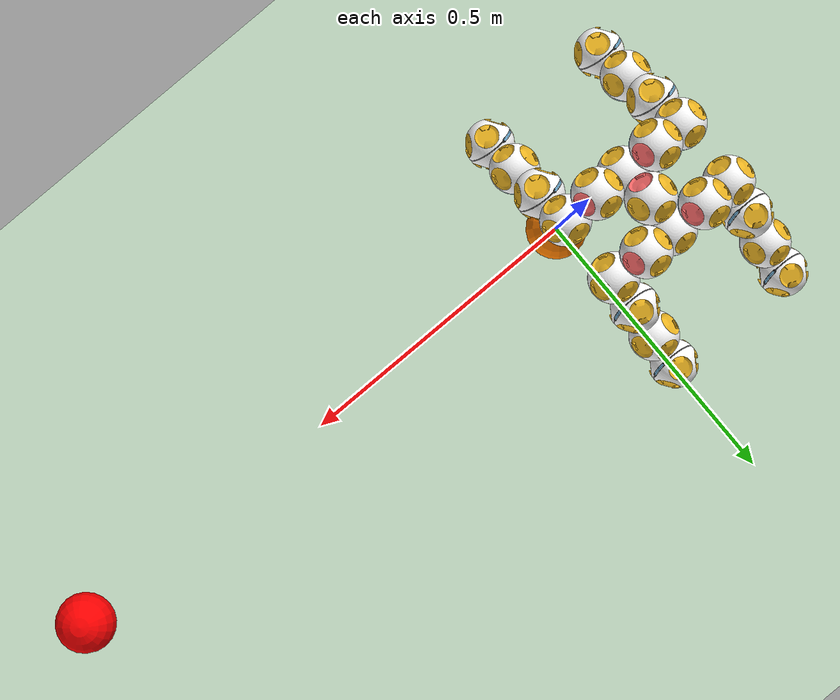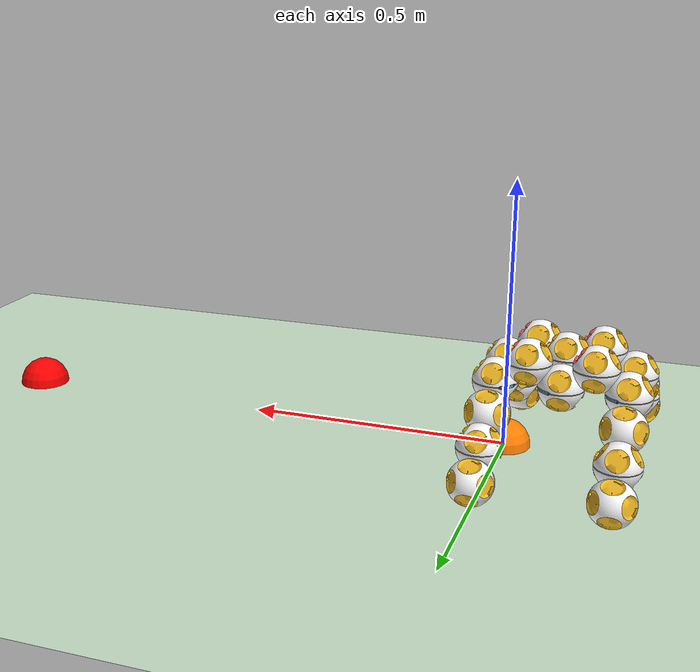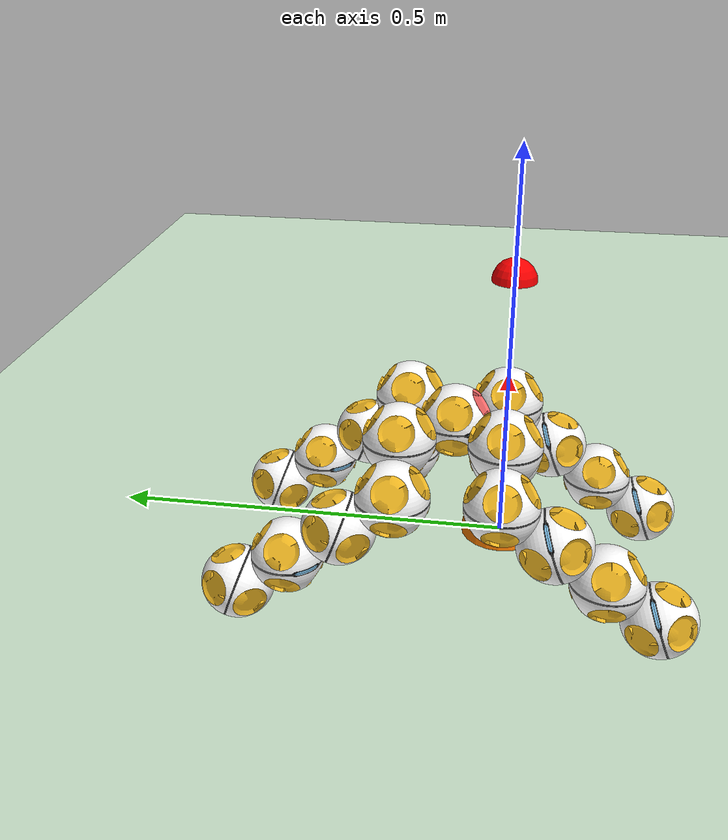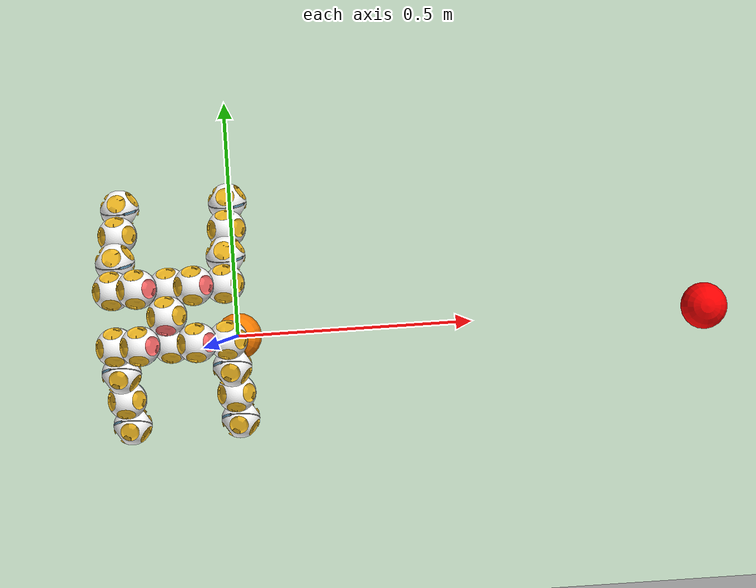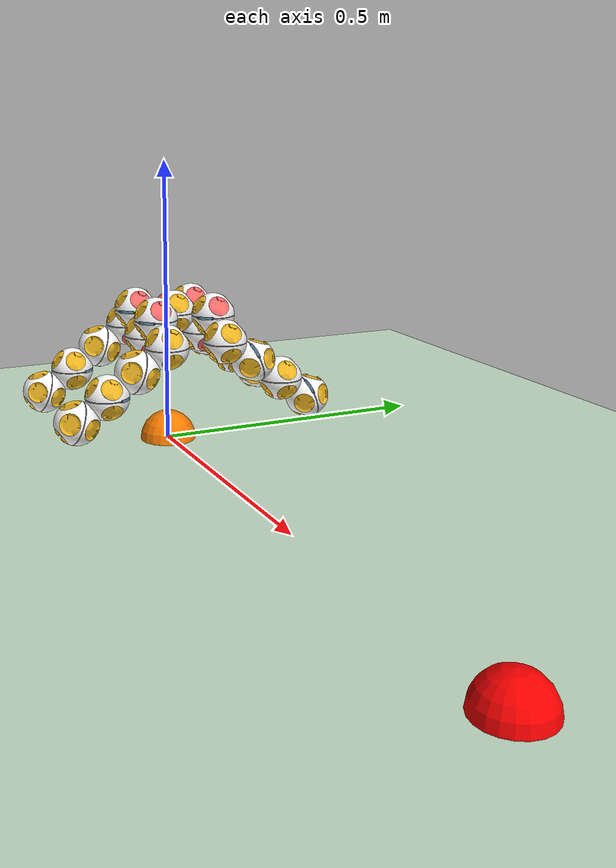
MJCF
<mujoco model="cellrobot(v1.0)">
    <compiler angle="radian" coordinate="local" meshdir="meshes" strippath="false" texturedir="textures"/>
    <option gravity="0 0 -9.81" integrator="RK4" timestep="0.001"/>

    <size nconmax="250" njmax="795" nstack="631875"/>

    <default>
        <geom contype="1"  conaffinity="1" condim="3" friction="1 0.005 0.0001" margin="0.001"   solref=".01 1" solimp=".99 .99 .01"/>
        <mesh scale="1 1 1"/>
        <joint armature="1" damping="15"  limited="true"/>
        <default class="detacher">
            <geom conaffinity="1"   margin="0.001" pos="0 0 0" rgba="0.93 0.71 0.13 1"
                  type="mesh"/>
        </default>
        <default class="cell">
            <geom conaffinity="1"   margin="0.001" solimp=".99 .99 .01" solref=".01 1"
                  type="mesh"/>
        </default>
    </default>
    <asset>
        <mesh file="cell_gear/shell_gear.STL" name="cell_half_gear"/>
        <mesh file="cell_gear/detacher1.STL" name="detacher1"/>
        <mesh file="cell_gear/detacher2.STL" name="detacher2"/>
        <mesh file="cell_gear/detacher3.STL" name="detacher3"/>
        <mesh file="cell_gear/detacher4.STL" name="detacher4"/>
        <mesh file="cell_gear/circle_gear.STL" name="circle_gear"/>
        <mesh file="cell_gear/led_gear.STL" name="led_gear"/>

        <mesh file="cell_motor/shell_motor.STL" name="cell_half_motor"/>
        <mesh file="cell_motor/detacher5.STL" name="detacher5"/>
        <mesh file="cell_motor/detacher6.STL" name="detacher6"/>
        <mesh file="cell_motor/detacher7.STL" name="detacher7"/>
        <mesh file="cell_motor/detacher8.STL" name="detacher8"/>
        <mesh file="cell_motor/circle_motor.STL" name="circle_motor"/>
        <mesh file="cell_motor/led_motor.STL" name="led_motor"/>

        <texture builtin="checker" height="100" name="floor_tex" rgb1=".2 .3 .4" rgb2=".1 .2 .3" type="2d" width="100"/>
        <texture builtin="checker" height="100" name="texplane" rgb1="0 0 0" rgb2="0.8 0.8 0.8" type="2d" width="100"/>
        <texture file="block.png" gridlayout=".U..LFRB.D.." gridsize="3 4" name="texture:object" type="cube"/>

        <material name="floor_mat" reflectance="0.5" shininess="0.8" specular="0.7" texrepeat="10 10"
                  texture="floor_tex"/>
        <material name="MatPlane" reflectance="0.5" shininess="1" specular="1" texrepeat="30 30" texture="texplane"/>
        <material name="material:object" reflectance="0" shininess="0" specular="1" texture="texture:object"/>
    </asset>

    <visual>
        <map fogend="3" fogstart="1.5"/>
        <quality shadowsize="20480"/>
    </visual>

    <contact>
        <exclude body1="cell1_1" body2="cell1_2"/>
        <exclude body1="cell2_1" body2="cell2_2"/>
        <exclude body1="cell3_1" body2="cell3_2"/>
        <exclude body1="cell4_1" body2="cell4_2"/>
        <exclude body1="cell5_1" body2="cell5_2"/>
        <exclude body1="cell6_1" body2="cell6_2"/>
        <exclude body1="cell7_1" body2="cell7_2"/>
        <exclude body1="cell8_1" body2="cell8_2"/>
        <exclude body1="cell9_1" body2="cell9_2"/>
        <exclude body1="cell10_1" body2="cell10_2"/>
        <exclude body1="cell11_1" body2="cell11_2"/>
        <exclude body1="cell12_1" body2="cell12_2"/>
        <exclude body1="cell13_1" body2="cell13_2"/>
        <exclude body1="cell14_1" body2="cell14_2"/>
        <exclude body1="cell15_1" body2="cell15_2"/>
        <exclude body1="cell16_1" body2="cell16_2"/>
        <exclude body1="cell17_1" body2="cell17_2"/>
        <exclude body1="cell18_1" body2="cell18_2"/>
        <exclude body1="cell19_1" body2="cell19_2"/>
        <exclude body1="cell20_1" body2="cell20_2"/>
        <exclude body1="cell21_1" body2="cell21_2"/>
        <exclude body1="cell22_1" body2="cell22_2"/>
        <exclude body1="cell0_1" body2="cell1_2"/>
        <exclude body1="cell1_2" body2="cell2_2"/>
        <exclude body1="cell2_2" body2="cell3_2"/>
        <exclude body1="cell3_2" body2="cell4_2"/>
        <exclude body1="cell2_2" body2="cell5_2"/>
        <exclude body1="cell5_2" body2="cell6_2"/>
        <exclude body1="cell6_2" body2="cell7_2"/>
        <exclude body1="cell7_2" body2="cell8_1"/>
        <exclude body1="cell6_2" body2="cell9_2"/>
        <exclude body1="cell9_2" body2="cell10_2"/>
        <exclude body1="cell0_2" body2="cell11_1"/>
        <exclude body1="cell11_2" body2="cell12_1"/>
        <exclude body1="cell12_2" body2="cell13_1"/>
        <exclude body1="cell8_2" body2="cell14_1"/>
        <exclude body1="cell14_2" body2="cell15_1"/>
        <exclude body1="cell15_2" body2="cell16_1"/>
        <exclude body1="cell4_1" body2="cell17_1"/>
        <exclude body1="cell17_2" body2="cell18_1"/>
        <exclude body1="cell18_2" body2="cell19_1"/>
        <exclude body1="cell10_1" body2="cell20_1"/>
        <exclude body1="cell20_2" body2="cell21_1"/>
        <exclude body1="cell21_2" body2="cell22_1"/>
    </contact>

    <worldbody>

        <light cutoff="100" diffuse="1 1 1" dir="-0 0 -1.3" directional="true" exponent="1" pos="0 0 1.3"
               specular=".1 .1 .1"/>

        <camera axisangle="2 2 -2 1" mode="trackcom" name="main1" pos="2 2 2" target="torso"/>

        <geom conaffinity="1" condim="3" material="MatPlane" name="floor" pos="0 0 0" rgba="0.8 0.9 0.8 1"
              size="15 15 15" type="plane"/>

        <camera name="track" mode="trackcom" pos="0 -3 0.3" xyaxes="1 0 0 0 0 1" target="torso"/>
        <site name="target1" pos="0 0 0" rgba="1 0.5 0 1" size="0.05 " type="sphere"/>
        <site name="target2" pos="1 0 0" rgba="1 0 0 1" size="0.05 " type="sphere"/>
        <body euler="0  0 2.3562" name="torso" pos="0  0  0.17">
            <geom name="torso_geom" pos="0  0  0" size="0.02" type="sphere"/>
            <joint armature="0" damping="0" limited="false" margin="0.01" name="root" pos="0 0 0" type="free"/>
            <body name="cell0_1" pos="0 0 -0.001">
                <inertial
                        fullinertia="5.338593e-05 5.2989770000000003e-05 6.634227000000001e-05 4.3267e-07 1.1089e-06 2.2068200000000003e-06"
                        mass="0.09814" pos="-0.0004 -0.00079 0.009519999999999999"/>
                <geom class="cell" mesh="cell_half_gear" pos="0  0  0" rgba="1 1 1 1"/>
                <geom class="detacher" mesh="detacher1" rgba="1 0.42 0.42 1"/>
                <geom class="detacher" mesh="detacher2"/>
                <geom class="detacher" mesh="detacher3"/>
                <geom class="detacher" mesh="detacher4"/>
                <geom class="cell" mesh="circle_gear" pos="0  0  0" rgba="0 0 0 1"/>
                <geom class="cell" mesh="led_gear" pos="0  0  0" rgba="0.53 0.81 0.98 1"/>
                <body name="cell0_2" pos="0 0 0">
                    <site name="cell0" pos="0 0 0 " size="0.001 0.001 0.001"/>
                    <joint axis="0 0 1" limited="false" name="joint:cell0" pos="0 0 -0.001"/>
                    <inertial
                            fullinertia="5.363084e-05 5.412367e-05 5.157385e-05 2.1730000000000002e-07 4.8619e-07 4.5697000000000005e-07"
                            mass="0.1346" pos="0.00027 0.00011999999999999999 -0.01269"/>
                    <geom class="cell" mesh="cell_half_motor" pos="0  0  0" rgba="1 1 1 1"/>
                    <geom class="detacher" mesh="detacher5"/>
                    <geom class="detacher" mesh="detacher6"/>
                    <geom class="detacher" mesh="detacher7"/>
                    <geom class="detacher" mesh="detacher8"/>
                    <geom class="cell" mesh="circle_motor" pos="0  0  0" rgba="0 0 0 1"/>
                    <geom class="cell" mesh="led_motor" pos="0  0  0" rgba="0.53 0.81 0.98 1"/>
                    <body name="cell11_1" pos="-0.03963432 0.03963432 -0.04162788"
                          quat="0.40820406 0.81654081 -0.0 0.40820406">
                        <inertial
                                fullinertia="5.338593e-05 5.2989770000000003e-05 6.634227000000001e-05 4.3267e-07 1.1089e-06 2.2068200000000003e-06"
                                mass="0.09814" pos="-0.0004 -0.00079 0.009519999999999999"/>
                        <geom class="cell" mesh="cell_half_gear" pos="0  0  0" rgba="1 1 1 1"/>
                        <geom class="detacher" mesh="detacher1" rgba="1 0.42 0.42 1"/>
                        <geom class="detacher" mesh="detacher2"/>
                        <geom class="detacher" mesh="detacher3"/>
                        <geom class="detacher" mesh="detacher4"/>
                        <geom class="cell" mesh="circle_gear" pos="0  0  0" rgba="0 0 0 1"/>
                        <geom class="cell" mesh="led_gear" pos="0  0  0" rgba="0.53 0.81 0.98 1"/>
                        <body name="cell11_2" pos="0 0 0">
                            <site name="cell11" pos="0 0 0 " size="0.001 0.001 0.001"/>
                            <joint axis="0 0 1" limited="false" name="joint:cell11" pos="0 0 -0.001"/>
                            <inertial
                                    fullinertia="5.363084e-05 5.412367e-05 5.157385e-05 2.1730000000000002e-07 4.8619e-07 4.5697000000000005e-07"
                                    mass="0.1346" pos="0.00027 0.00011999999999999999 -0.01269"/>
                            <geom class="cell" mesh="cell_half_motor" pos="0  0  0" rgba="1 1 1 1"/>
                            <geom class="detacher" mesh="detacher5"/>
                            <geom class="detacher" mesh="detacher6"/>
                            <geom class="detacher" mesh="detacher7"/>
                            <geom class="detacher" mesh="detacher8"/>
                            <geom class="cell" mesh="circle_motor" pos="0  0  0" rgba="0 0 0 1"/>
                            <geom class="cell" mesh="led_motor" pos="0  0  0" rgba="0.53 0.81 0.98 1"/>
                            <body name="cell12_1" pos="-0.03963432 -0.03963432 -0.04162788"
                                  quat="0.0 0.57738155 0.57738155 0.57728771">
                                <inertial
                                        fullinertia="5.338593e-05 5.2989770000000003e-05 6.634227000000001e-05 4.3267e-07 1.1089e-06 2.2068200000000003e-06"
                                        mass="0.09814" pos="-0.0004 -0.00079 0.009519999999999999"/>
                                <geom class="cell" mesh="cell_half_gear" pos="0  0  0" rgba="1 1 1 1"/>
                                <geom class="detacher" mesh="detacher1" rgba="1 0.42 0.42 1"/>
                                <geom class="detacher" mesh="detacher2"/>
                                <geom class="detacher" mesh="detacher3"/>
                                <geom class="detacher" mesh="detacher4"/>
                                <geom class="cell" mesh="circle_gear" pos="0  0  0" rgba="0 0 0 1"/>
                                <geom class="cell" mesh="led_gear" pos="0  0  0" rgba="0.53 0.81 0.98 1"/>
                                <body name="cell12_2" pos="0 0 0">
                                    <site name="cell12" pos="0 0 0 " size="0.001 0.001 0.001"/>
                                    <joint axis="0 0 1" limited="false" name="joint:cell12" pos="0 0 -0.001"/>
                                    <inertial
                                            fullinertia="5.363084e-05 5.412367e-05 5.157385e-05 2.1730000000000002e-07 4.8619e-07 4.5697000000000005e-07"
                                            mass="0.1346" pos="0.00027 0.00011999999999999999 -0.01269"/>
                                    <geom class="cell" mesh="cell_half_motor" pos="0  0  0" rgba="1 1 1 1"/>
                                    <geom class="detacher" mesh="detacher5"/>
                                    <geom class="detacher" mesh="detacher6"/>
                                    <geom class="detacher" mesh="detacher7"/>
                                    <geom class="detacher" mesh="detacher8"/>
                                    <geom class="cell" mesh="circle_motor" pos="0  0  0" rgba="0 0 0 1"/>
                                    <geom class="cell" mesh="led_motor" pos="0  0  0" rgba="0.53 0.81 0.98 1"/>
                                    <body name="cell13_1" pos="-0.03963432 -0.03963432 -0.04162788"
                                          quat="0.0 0.57738155 0.57738155 0.57728771">
                                        <inertial
                                                fullinertia="5.338593e-05 5.2989770000000003e-05 6.634227000000001e-05 4.3267e-07 1.1089e-06 2.2068200000000003e-06"
                                                mass="0.09814" pos="-0.0004 -0.00079 0.009519999999999999"/>
                                        <geom class="cell" mesh="cell_half_gear" pos="0  0  0" rgba="1 1 1 1"/>
                                        <geom class="detacher" mesh="detacher1" rgba="1 0.42 0.42 1"/>
                                        <geom class="detacher" mesh="detacher2"/>
                                        <geom class="detacher" mesh="detacher3"/>
                                        <geom class="detacher" mesh="detacher4"/>
                                        <geom class="cell" mesh="circle_gear" pos="0  0  0" rgba="0 0 0 1"/>
                                        <geom class="cell" mesh="led_gear" pos="0  0  0" rgba="0.53 0.81 0.98 1"/>
                                        <body name="cell13_2" pos="0 0 0">
                                            <site name="cell13" pos="0 0 0 " size="0.001 0.001 0.001"/>
                                            <joint axis="0 0 1" limited="false" name="joint:cell13" pos="0 0 -0.001"/>
                                            <inertial
                                                    fullinertia="5.363084e-05 5.412367e-05 5.157385e-05 2.1730000000000002e-07 4.8619e-07 4.5697000000000005e-07"
                                                    mass="0.1346" pos="0.00027 0.00011999999999999999 -0.01269"/>
                                            <geom class="cell" mesh="cell_half_motor" pos="0  0  0" rgba="1 1 1 1"/>
                                            <geom class="detacher" mesh="detacher5"/>
                                            <geom class="detacher" mesh="detacher6"/>
                                            <geom class="detacher" mesh="detacher7"/>
                                            <geom class="detacher" mesh="detacher8"/>
                                            <geom class="cell" mesh="circle_motor" pos="0  0  0" rgba="0 0 0 1"/>
                                            <geom class="cell" mesh="led_motor" pos="0  0  0" rgba="0.53 0.81 0.98 1"/>
                                        </body>
                                    </body>
                                </body>
                            </body>
                        </body>
                    </body>
                </body>
                <body name="cell1_2" pos="0.04030095 0.04030095 0.0402944" quat="0.0 -0.0 -0.0 1.0">
                    <inertial
                            fullinertia="5.363084e-05 5.412367e-05 5.157385e-05 2.1730000000000002e-07 4.8619e-07 4.5697000000000005e-07"
                            mass="0.1346" pos="0.00027 0.00011999999999999999 -0.01269"/>
                    <geom class="cell" mesh="cell_half_motor" pos="0  0  0" rgba="1 1 1 1"/>
                    <geom class="detacher" mesh="detacher5"/>
                    <geom class="detacher" mesh="detacher6"/>
                    <geom class="detacher" mesh="detacher7"/>
                    <geom class="detacher" mesh="detacher8"/>
                    <geom class="cell" mesh="circle_motor" pos="0  0  0" rgba="0 0 0 1"/>
                    <geom class="cell" mesh="led_motor" pos="0  0  0" rgba="0.53 0.81 0.98 1"/>
                    <body name="cell1_1" pos="0 0 0">
                        <site name="cell1" pos="0 0 0 " size="0.001 0.001 0.001"/>
                        <joint limited="false" name="joint:cell1" pos="0 0 -0.001"/>
                        <inertial
                                fullinertia="5.338593e-05 5.2989770000000003e-05 6.634227000000001e-05 4.3267e-07 1.1089e-06 2.2068200000000003e-06"
                                mass="0.09814" pos="-0.0004 -0.00079 0.009519999999999999"/>
                        <geom class="cell" mesh="cell_half_gear" pos="0  0  0" rgba="1 1 1 1"/>
                        <geom class="detacher" mesh="detacher1" rgba="1 0.42 0.42 1"/>
                        <geom class="detacher" mesh="detacher2"/>
                        <geom class="detacher" mesh="detacher3"/>
                        <geom class="detacher" mesh="detacher4"/>
                        <geom class="cell" mesh="circle_gear" pos="0  0  0" rgba="0 0 0 1"/>
                        <geom class="cell" mesh="led_gear" pos="0  0  0" rgba="0.53 0.81 0.98 1"/>
                    </body>
                    <body name="cell2_2" pos="-0.04030095 -0.04030095 -0.0422944" quat="0.0 0.70710678 0.70710678 -0.0">
                        <inertial
                                fullinertia="5.363084e-05 5.412367e-05 5.157385e-05 2.1730000000000002e-07 4.8619e-07 4.5697000000000005e-07"
                                mass="0.1346" pos="0.00027 0.00011999999999999999 -0.01269"/>
                        <geom class="cell" mesh="cell_half_motor" pos="0  0  0" rgba="1 1 1 1"/>
                        <geom class="detacher" mesh="detacher5"/>
                        <geom class="detacher" mesh="detacher6"/>
                        <geom class="detacher" mesh="detacher7"/>
                        <geom class="detacher" mesh="detacher8"/>
                        <geom class="cell" mesh="circle_motor" pos="0  0  0" rgba="0 0 0 1"/>
                        <geom class="cell" mesh="led_motor" pos="0  0  0" rgba="0.53 0.81 0.98 1"/>
                        <body name="cell2_1" pos="0 0 0">
                            <site name="cell2" pos="0 0 0 " size="0.001 0.001 0.001"/>
                            <joint limited="false" name="joint:cell2" pos="0 0 -0.001"/>
                            <inertial
                                    fullinertia="5.338593e-05 5.2989770000000003e-05 6.634227000000001e-05 4.3267e-07 1.1089e-06 2.2068200000000003e-06"
                                    mass="0.09814" pos="-0.0004 -0.00079 0.009519999999999999"/>
                            <geom class="cell" mesh="cell_half_gear" pos="0  0  0" rgba="1 1 1 1"/>
                            <geom class="detacher" mesh="detacher1" rgba="1 0.42 0.42 1"/>
                            <geom class="detacher" mesh="detacher2"/>
                            <geom class="detacher" mesh="detacher3"/>
                            <geom class="detacher" mesh="detacher4"/>
                            <geom class="cell" mesh="circle_gear" pos="0  0  0" rgba="0 0 0 1"/>
                            <geom class="cell" mesh="led_gear" pos="0  0  0" rgba="0.53 0.81 0.98 1"/>
                        </body>
                        <body name="cell3_2" pos="-0.04030095 -0.04030095 -0.0422944"
                              quat="0.0 0.70710678 0.70710678 -0.0">
                            <inertial
                                    fullinertia="5.363084e-05 5.412367e-05 5.157385e-05 2.1730000000000002e-07 4.8619e-07 4.5697000000000005e-07"
                                    mass="0.1346" pos="0.00027 0.00011999999999999999 -0.01269"/>
                            <geom class="cell" mesh="cell_half_motor" pos="0  0  0" rgba="1 1 1 1"/>
                            <geom class="detacher" mesh="detacher5"/>
                            <geom class="detacher" mesh="detacher6"/>
                            <geom class="detacher" mesh="detacher7"/>
                            <geom class="detacher" mesh="detacher8"/>
                            <geom class="cell" mesh="circle_motor" pos="0  0  0" rgba="0 0 0 1"/>
                            <geom class="cell" mesh="led_motor" pos="0  0  0" rgba="0.53 0.81 0.98 1"/>
                            <body name="cell3_1" pos="0 0 0">
                                <site name="cell3" pos="0 0 0 " size="0.001 0.001 0.001"/>
                                <joint limited="false" name="joint:cell3" pos="0 0 -0.001"/>
                                <inertial
                                        fullinertia="5.338593e-05 5.2989770000000003e-05 6.634227000000001e-05 4.3267e-07 1.1089e-06 2.2068200000000003e-06"
                                        mass="0.09814" pos="-0.0004 -0.00079 0.009519999999999999"/>
                                <geom class="cell" mesh="cell_half_gear" pos="0  0  0" rgba="1 1 1 1"/>
                                <geom class="detacher" mesh="detacher1" rgba="1 0.42 0.42 1"/>
                                <geom class="detacher" mesh="detacher2"/>
                                <geom class="detacher" mesh="detacher3"/>
                                <geom class="detacher" mesh="detacher4"/>
                                <geom class="cell" mesh="circle_gear" pos="0  0  0" rgba="0 0 0 1"/>
                                <geom class="cell" mesh="led_gear" pos="0  0  0" rgba="0.53 0.81 0.98 1"/>
                            </body>
                            <body name="cell4_2" pos="-0.04030095 -0.04030095 -0.0422944"
                                  quat="0.0 0.70710678 0.70710678 -0.0">
                                <inertial
                                        fullinertia="5.363084e-05 5.412367e-05 5.157385e-05 2.1730000000000002e-07 4.8619e-07 4.5697000000000005e-07"
                                        mass="0.1346" pos="0.00027 0.00011999999999999999 -0.01269"/>
                                <geom class="cell" mesh="cell_half_motor" pos="0  0  0" rgba="1 1 1 1"/>
                                <geom class="detacher" mesh="detacher5"/>
                                <geom class="detacher" mesh="detacher6"/>
                                <geom class="detacher" mesh="detacher7"/>
                                <geom class="detacher" mesh="detacher8"/>
                                <geom class="cell" mesh="circle_motor" pos="0  0  0" rgba="0 0 0 1"/>
                                <geom class="cell" mesh="led_motor" pos="0  0  0" rgba="0.53 0.81 0.98 1"/>
                                <body name="cell4_1" pos="0 0 0">
                                    <site name="cell4" pos="0 0 0 " size="0.001 0.001 0.001"/>
                                    <joint limited="false" name="joint:cell4" pos="0 0 -0.001"/>
                                    <inertial
                                            fullinertia="5.338593e-05 5.2989770000000003e-05 6.634227000000001e-05 4.3267e-07 1.1089e-06 2.2068200000000003e-06"
                                            mass="0.09814" pos="-0.0004 -0.00079 0.009519999999999999"/>
                                    <geom class="cell" mesh="cell_half_gear" pos="0  0  0" rgba="1 1 1 1"/>
                                    <geom class="detacher" mesh="detacher1" rgba="1 0.42 0.42 1"/>
                                    <geom class="detacher" mesh="detacher2"/>
                                    <geom class="detacher" mesh="detacher3"/>
                                    <geom class="detacher" mesh="detacher4"/>
                                    <geom class="cell" mesh="circle_gear" pos="0  0  0" rgba="0 0 0 1"/>
                                    <geom class="cell" mesh="led_gear" pos="0  0  0" rgba="0.53 0.81 0.98 1"/>
                                    <body name="cell17_1" pos="-0.03963432 0.03963432 0.03962788"
                                          quat="0.57738155 0.0 0.57728771 -0.57738155">
                                        <inertial
                                                fullinertia="5.338593e-05 5.2989770000000003e-05 6.634227000000001e-05 4.3267e-07 1.1089e-06 2.2068200000000003e-06"
                                                mass="0.09814" pos="-0.0004 -0.00079 0.009519999999999999"/>
                                        <geom class="cell" mesh="cell_half_gear" pos="0  0  0" rgba="1 1 1 1"/>
                                        <geom class="detacher" mesh="detacher1" rgba="1 0.42 0.42 1"/>
                                        <geom class="detacher" mesh="detacher2"/>
                                        <geom class="detacher" mesh="detacher3"/>
                                        <geom class="detacher" mesh="detacher4"/>
                                        <geom class="cell" mesh="circle_gear" pos="0  0  0" rgba="0 0 0 1"/>
                                        <geom class="cell" mesh="led_gear" pos="0  0  0" rgba="0.53 0.81 0.98 1"/>
                                        <body name="cell17_2" pos="0 0 0">
                                            <site name="cell17" pos="0 0 0 " size="0.001 0.001 0.001"/>
                                            <joint axis="0 0 1" limited="false" name="joint:cell17" pos="0 0 -0.001"/>
                                            <inertial
                                                    fullinertia="5.363084e-05 5.412367e-05 5.157385e-05 2.1730000000000002e-07 4.8619e-07 4.5697000000000005e-07"
                                                    mass="0.1346" pos="0.00027 0.00011999999999999999 -0.01269"/>
                                            <geom class="cell" mesh="cell_half_motor" pos="0  0  0" rgba="1 1 1 1"/>
                                            <geom class="detacher" mesh="detacher5"/>
                                            <geom class="detacher" mesh="detacher6"/>
                                            <geom class="detacher" mesh="detacher7"/>
                                            <geom class="detacher" mesh="detacher8"/>
                                            <geom class="cell" mesh="circle_motor" pos="0  0  0" rgba="0 0 0 1"/>
                                            <geom class="cell" mesh="led_motor" pos="0  0  0" rgba="0.53 0.81 0.98 1"/>
                                            <body name="cell18_1" pos="-0.03963432 -0.03963432 -0.04162788"
                                                  quat="0.0 0.57738155 0.57738155 0.57728771">
                                                <inertial
                                                        fullinertia="5.338593e-05 5.2989770000000003e-05 6.634227000000001e-05 4.3267e-07 1.1089e-06 2.2068200000000003e-06"
                                                        mass="0.09814" pos="-0.0004 -0.00079 0.009519999999999999"/>
                                                <geom class="cell" mesh="cell_half_gear" pos="0  0  0" rgba="1 1 1 1"/>
                                                <geom class="detacher" mesh="detacher1" rgba="1 0.42 0.42 1"/>
                                                <geom class="detacher" mesh="detacher2"/>
                                                <geom class="detacher" mesh="detacher3"/>
                                                <geom class="detacher" mesh="detacher4"/>
                                                <geom class="cell" mesh="circle_gear" pos="0  0  0" rgba="0 0 0 1"/>
                                                <geom class="cell" mesh="led_gear" pos="0  0  0"
                                                      rgba="0.53 0.81 0.98 1"/>
                                                <body name="cell18_2" pos="0 0 0">
                                                    <site name="cell18" pos="0 0 0 " size="0.001 0.001 0.001"/>
                                                    <joint axis="0 0 1" limited="false" name="joint:cell18"
                                                           pos="0 0 -0.001"/>
                                                    <inertial
                                                            fullinertia="5.363084e-05 5.412367e-05 5.157385e-05 2.1730000000000002e-07 4.8619e-07 4.5697000000000005e-07"
                                                            mass="0.1346"
                                                            pos="0.00027 0.00011999999999999999 -0.01269"/>
                                                    <geom class="cell" mesh="cell_half_motor" pos="0  0  0"
                                                          rgba="1 1 1 1"/>
                                                    <geom class="detacher" mesh="detacher5"/>
                                                    <geom class="detacher" mesh="detacher6"/>
                                                    <geom class="detacher" mesh="detacher7"/>
                                                    <geom class="detacher" mesh="detacher8"/>
                                                    <geom class="cell" mesh="circle_motor" pos="0  0  0"
                                                          rgba="0 0 0 1"/>
                                                    <geom class="cell" mesh="led_motor" pos="0  0  0"
                                                          rgba="0.53 0.81 0.98 1"/>
                                                    <body name="cell19_1" pos="-0.03963432 -0.03963432 -0.04162788"
                                                          quat="0.0 0.57738155 0.57738155 0.57728771">
                                                        <inertial
                                                                fullinertia="5.338593e-05 5.2989770000000003e-05 6.634227000000001e-05 4.3267e-07 1.1089e-06 2.2068200000000003e-06"
                                                                mass="0.09814"
                                                                pos="-0.0004 -0.00079 0.009519999999999999"/>
                                                        <geom class="cell" mesh="cell_half_gear" pos="0  0  0"
                                                              rgba="1 1 1 1"/>
                                                        <geom class="detacher" mesh="detacher1" rgba="1 0.42 0.42 1"/>
                                                        <geom class="detacher" mesh="detacher2"/>
                                                        <geom class="detacher" mesh="detacher3"/>
                                                        <geom class="detacher" mesh="detacher4"/>
                                                        <geom class="cell" mesh="circle_gear" pos="0  0  0"
                                                              rgba="0 0 0 1"/>
                                                        <geom class="cell" mesh="led_gear" pos="0  0  0"
                                                              rgba="0.53 0.81 0.98 1"/>
                                                        <body name="cell19_2" pos="0 0 0">
                                                            <site name="cell19" pos="0 0 0 " size="0.001 0.001 0.001"/>
                                                            <joint axis="0 0 1" limited="false" name="joint:cell19"
                                                                   pos="0 0 -0.001"/>
                                                            <inertial
                                                                    fullinertia="5.363084e-05 5.412367e-05 5.157385e-05 2.1730000000000002e-07 4.8619e-07 4.5697000000000005e-07"
                                                                    mass="0.1346"
                                                                    pos="0.00027 0.00011999999999999999 -0.01269"/>
                                                            <geom class="cell" mesh="cell_half_motor" pos="0  0  0"
                                                                  rgba="1 1 1 1"/>
                                                            <geom class="detacher" mesh="detacher5"/>
                                                            <geom class="detacher" mesh="detacher6"/>
                                                            <geom class="detacher" mesh="detacher7"/>
                                                            <geom class="detacher" mesh="detacher8"/>
                                                            <geom class="cell" mesh="circle_motor" pos="0  0  0"
                                                                  rgba="0 0 0 1"/>
                                                            <geom class="cell" mesh="led_motor" pos="0  0  0"
                                                                  rgba="0.53 0.81 0.98 1"/>
                                                        </body>
                                                    </body>
                                                </body>
                                            </body>
                                        </body>
                                    </body>
                                </body>
                            </body>
                        </body>
                        <body name="cell5_2" pos="0.04030095 -0.04030095 -0.0422944" quat="0.0 0.0 1.0 -0.0">
                            <inertial
                                    fullinertia="5.363084e-05 5.412367e-05 5.157385e-05 2.1730000000000002e-07 4.8619e-07 4.5697000000000005e-07"
                                    mass="0.1346" pos="0.00027 0.00011999999999999999 -0.01269"/>
                            <geom class="cell" mesh="cell_half_motor" pos="0  0  0" rgba="1 1 1 1"/>
                            <geom class="detacher" mesh="detacher5"/>
                            <geom class="detacher" mesh="detacher6"/>
                            <geom class="detacher" mesh="detacher7"/>
                            <geom class="detacher" mesh="detacher8"/>
                            <geom class="cell" mesh="circle_motor" pos="0  0  0" rgba="0 0 0 1"/>
                            <geom class="cell" mesh="led_motor" pos="0  0  0" rgba="0.53 0.81 0.98 1"/>
                            <body name="cell5_1" pos="0 0 0">
                                <site name="cell5" pos="0 0 0 " size="0.001 0.001 0.001"/>
                                <joint limited="false" name="joint:cell5" pos="0 0 -0.001"/>
                                <inertial
                                        fullinertia="5.338593e-05 5.2989770000000003e-05 6.634227000000001e-05 4.3267e-07 1.1089e-06 2.2068200000000003e-06"
                                        mass="0.09814" pos="-0.0004 -0.00079 0.009519999999999999"/>
                                <geom class="cell" mesh="cell_half_gear" pos="0  0  0" rgba="1 1 1 1"/>
                                <geom class="detacher" mesh="detacher1" rgba="1 0.42 0.42 1"/>
                                <geom class="detacher" mesh="detacher2"/>
                                <geom class="detacher" mesh="detacher3"/>
                                <geom class="detacher" mesh="detacher4"/>
                                <geom class="cell" mesh="circle_gear" pos="0  0  0" rgba="0 0 0 1"/>
                                <geom class="cell" mesh="led_gear" pos="0  0  0" rgba="0.53 0.81 0.98 1"/>
                            </body>
                            <body name="cell6_2" pos="-0.04030095 -0.04030095 -0.0422944" quat="0.0 0.0 1.0 -0.0">
                                <inertial
                                        fullinertia="5.363084e-05 5.412367e-05 5.157385e-05 2.1730000000000002e-07 4.8619e-07 4.5697000000000005e-07"
                                        mass="0.1346" pos="0.00027 0.00011999999999999999 -0.01269"/>
                                <geom class="cell" mesh="cell_half_motor" pos="0  0  0" rgba="1 1 1 1"/>
                                <geom class="detacher" mesh="detacher5"/>
                                <geom class="detacher" mesh="detacher6"/>
                                <geom class="detacher" mesh="detacher7"/>
                                <geom class="detacher" mesh="detacher8"/>
                                <geom class="cell" mesh="circle_motor" pos="0  0  0" rgba="0 0 0 1"/>
                                <geom class="cell" mesh="led_motor" pos="0  0  0" rgba="0.53 0.81 0.98 1"/>
                                <body name="cell6_1" pos="0 0 0">
                                    <site name="cell6" pos="0 0 0 " size="0.001 0.001 0.001"/>
                                    <joint limited="false" name="joint:cell6" pos="0 0 -0.001"/>
                                    <inertial
                                            fullinertia="5.338593e-05 5.2989770000000003e-05 6.634227000000001e-05 4.3267e-07 1.1089e-06 2.2068200000000003e-06"
                                            mass="0.09814" pos="-0.0004 -0.00079 0.009519999999999999"/>
                                    <geom class="cell" mesh="cell_half_gear" pos="0  0  0" rgba="1 1 1 1"/>
                                    <geom class="detacher" mesh="detacher1" rgba="1 0.42 0.42 1"/>
                                    <geom class="detacher" mesh="detacher2"/>
                                    <geom class="detacher" mesh="detacher3"/>
                                    <geom class="detacher" mesh="detacher4"/>
                                    <geom class="cell" mesh="circle_gear" pos="0  0  0" rgba="0 0 0 1"/>
                                    <geom class="cell" mesh="led_gear" pos="0  0  0" rgba="0.53 0.81 0.98 1"/>
                                </body>
                                <body name="cell7_2" pos="0.04030095 0.04030095 -0.0422944"
                                      quat="0.0 0.70710678 0.70710678 0.0">
                                    <inertial
                                            fullinertia="5.363084e-05 5.412367e-05 5.157385e-05 2.1730000000000002e-07 4.8619e-07 4.5697000000000005e-07"
                                            mass="0.1346" pos="0.00027 0.00011999999999999999 -0.01269"/>
                                    <geom class="cell" mesh="cell_half_motor" pos="0  0  0" rgba="1 1 1 1"/>
                                    <geom class="detacher" mesh="detacher5"/>
                                    <geom class="detacher" mesh="detacher6"/>
                                    <geom class="detacher" mesh="detacher7"/>
                                    <geom class="detacher" mesh="detacher8"/>
                                    <geom class="cell" mesh="circle_motor" pos="0  0  0" rgba="0 0 0 1"/>
                                    <geom class="cell" mesh="led_motor" pos="0  0  0" rgba="0.53 0.81 0.98 1"/>
                                    <body name="cell7_1" pos="0 0 0">
                                        <site name="cell7" pos="0 0 0 " size="0.001 0.001 0.001"/>
                                        <joint limited="false" name="joint:cell7" pos="0 0 -0.001"/>
                                        <inertial
                                                fullinertia="5.338593e-05 5.2989770000000003e-05 6.634227000000001e-05 4.3267e-07 1.1089e-06 2.2068200000000003e-06"
                                                mass="0.09814" pos="-0.0004 -0.00079 0.009519999999999999"/>
                                        <geom class="cell" mesh="cell_half_gear" pos="0  0  0" rgba="1 1 1 1"/>
                                        <geom class="detacher" mesh="detacher1" rgba="1 0.42 0.42 1"/>
                                        <geom class="detacher" mesh="detacher2"/>
                                        <geom class="detacher" mesh="detacher3"/>
                                        <geom class="detacher" mesh="detacher4"/>
                                        <geom class="cell" mesh="circle_gear" pos="0  0  0" rgba="0 0 0 1"/>
                                        <geom class="cell" mesh="led_gear" pos="0  0  0" rgba="0.53 0.81 0.98 1"/>
                                    </body>
                                    <body name="cell8_1" pos="0.04030095 0.04030095 -0.0402944"
                                          quat="0.0 -0.0 -0.0 1.0">
                                        <inertial
                                                fullinertia="5.338593e-05 5.2989770000000003e-05 6.634227000000001e-05 4.3267e-07 1.1089e-06 2.2068200000000003e-06"
                                                mass="0.09814" pos="-0.0004 -0.00079 0.009519999999999999"/>
                                        <geom class="cell" mesh="cell_half_gear" pos="0  0  0" rgba="1 1 1 1"/>
                                        <geom class="detacher" mesh="detacher1" rgba="1 0.42 0.42 1"/>
                                        <geom class="detacher" mesh="detacher2"/>
                                        <geom class="detacher" mesh="detacher3"/>
                                        <geom class="detacher" mesh="detacher4"/>
                                        <geom class="cell" mesh="circle_gear" pos="0  0  0" rgba="0 0 0 1"/>
                                        <geom class="cell" mesh="led_gear" pos="0  0  0" rgba="0.53 0.81 0.98 1"/>
                                        <body name="cell8_2" pos="0 0 0">
                                            <site name="cell8" pos="0 0 0 " size="0.001 0.001 0.001"/>
                                            <joint axis="0 0 1" limited="false" name="joint:cell8" pos="0 0 -0.001"/>
                                            <inertial
                                                    fullinertia="5.363084e-05 5.412367e-05 5.157385e-05 2.1730000000000002e-07 4.8619e-07 4.5697000000000005e-07"
                                                    mass="0.1346" pos="0.00027 0.00011999999999999999 -0.01269"/>
                                            <geom class="cell" mesh="cell_half_motor" pos="0  0  0" rgba="1 1 1 1"/>
                                            <geom class="detacher" mesh="detacher5"/>
                                            <geom class="detacher" mesh="detacher6"/>
                                            <geom class="detacher" mesh="detacher7"/>
                                            <geom class="detacher" mesh="detacher8"/>
                                            <geom class="cell" mesh="circle_motor" pos="0  0  0" rgba="0 0 0 1"/>
                                            <geom class="cell" mesh="led_motor" pos="0  0  0" rgba="0.53 0.81 0.98 1"/>
                                            <body name="cell14_1" pos="0.03963432 -0.03963432 -0.04162788"
                                                  quat="0.40820406 0.0 -0.81654081 -0.40820406">
                                                <inertial
                                                        fullinertia="5.338593e-05 5.2989770000000003e-05 6.634227000000001e-05 4.3267e-07 1.1089e-06 2.2068200000000003e-06"
                                                        mass="0.09814" pos="-0.0004 -0.00079 0.009519999999999999"/>
                                                <geom class="cell" mesh="cell_half_gear" pos="0  0  0" rgba="1 1 1 1"/>
                                                <geom class="detacher" mesh="detacher1" rgba="1 0.42 0.42 1"/>
                                                <geom class="detacher" mesh="detacher2"/>
                                                <geom class="detacher" mesh="detacher3"/>
                                                <geom class="detacher" mesh="detacher4"/>
                                                <geom class="cell" mesh="circle_gear" pos="0  0  0" rgba="0 0 0 1"/>
                                                <geom class="cell" mesh="led_gear" pos="0  0  0"
                                                      rgba="0.53 0.81 0.98 1"/>
                                                <body name="cell14_2" pos="0 0 0">
                                                    <site name="cell14" pos="0 0 0 " size="0.001 0.001 0.001"/>
                                                    <joint axis="0 0 1" limited="false" name="joint:cell14"
                                                           pos="0 0 -0.001"/>
                                                    <inertial
                                                            fullinertia="5.363084e-05 5.412367e-05 5.157385e-05 2.1730000000000002e-07 4.8619e-07 4.5697000000000005e-07"
                                                            mass="0.1346"
                                                            pos="0.00027 0.00011999999999999999 -0.01269"/>
                                                    <geom class="cell" mesh="cell_half_motor" pos="0  0  0"
                                                          rgba="1 1 1 1"/>
                                                    <geom class="detacher" mesh="detacher5"/>
                                                    <geom class="detacher" mesh="detacher6"/>
                                                    <geom class="detacher" mesh="detacher7"/>
                                                    <geom class="detacher" mesh="detacher8"/>
                                                    <geom class="cell" mesh="circle_motor" pos="0  0  0"
                                                          rgba="0 0 0 1"/>
                                                    <geom class="cell" mesh="led_motor" pos="0  0  0"
                                                          rgba="0.53 0.81 0.98 1"/>
                                                    <body name="cell15_1" pos="-0.03963432 -0.03963432 -0.04162788"
                                                          quat="0.0 0.57738155 0.57738155 0.57728771">
                                                        <inertial
                                                                fullinertia="5.338593e-05 5.2989770000000003e-05 6.634227000000001e-05 4.3267e-07 1.1089e-06 2.2068200000000003e-06"
                                                                mass="0.09814"
                                                                pos="-0.0004 -0.00079 0.009519999999999999"/>
                                                        <geom class="cell" mesh="cell_half_gear" pos="0  0  0"
                                                              rgba="1 1 1 1"/>
                                                        <geom class="detacher" mesh="detacher1" rgba="1 0.42 0.42 1"/>
                                                        <geom class="detacher" mesh="detacher2"/>
                                                        <geom class="detacher" mesh="detacher3"/>
                                                        <geom class="detacher" mesh="detacher4"/>
                                                        <geom class="cell" mesh="circle_gear" pos="0  0  0"
                                                              rgba="0 0 0 1"/>
                                                        <geom class="cell" mesh="led_gear" pos="0  0  0"
                                                              rgba="0.53 0.81 0.98 1"/>
                                                        <body name="cell15_2" pos="0 0 0">
                                                            <site name="cell15" pos="0 0 0 " size="0.001 0.001 0.001"/>
                                                            <joint axis="0 0 1" limited="false" name="joint:cell15"
                                                                   pos="0 0 -0.001"/>
                                                            <inertial
                                                                    fullinertia="5.363084e-05 5.412367e-05 5.157385e-05 2.1730000000000002e-07 4.8619e-07 4.5697000000000005e-07"
                                                                    mass="0.1346"
                                                                    pos="0.00027 0.00011999999999999999 -0.01269"/>
                                                            <geom class="cell" mesh="cell_half_motor" pos="0  0  0"
                                                                  rgba="1 1 1 1"/>
                                                            <geom class="detacher" mesh="detacher5"/>
                                                            <geom class="detacher" mesh="detacher6"/>
                                                            <geom class="detacher" mesh="detacher7"/>
                                                            <geom class="detacher" mesh="detacher8"/>
                                                            <geom class="cell" mesh="circle_motor" pos="0  0  0"
                                                                  rgba="0 0 0 1"/>
                                                            <geom class="cell" mesh="led_motor" pos="0  0  0"
                                                                  rgba="0.53 0.81 0.98 1"/>
                                                            <body name="cell16_1"
                                                                  pos="-0.03963432 -0.03963432 -0.04162788"
                                                                  quat="0.0 0.57738155 0.57738155 0.57728771">
                                                                <inertial
                                                                        fullinertia="5.338593e-05 5.2989770000000003e-05 6.634227000000001e-05 4.3267e-07 1.1089e-06 2.2068200000000003e-06"
                                                                        mass="0.09814"
                                                                        pos="-0.0004 -0.00079 0.009519999999999999"/>
                                                                <geom class="cell" mesh="cell_half_gear" pos="0  0  0"
                                                                      rgba="1 1 1 1"/>
                                                                <geom class="detacher" mesh="detacher1"
                                                                      rgba="1 0.42 0.42 1"/>
                                                                <geom class="detacher" mesh="detacher2"/>
                                                                <geom class="detacher" mesh="detacher3"/>
                                                                <geom class="detacher" mesh="detacher4"/>
                                                                <geom class="cell" mesh="circle_gear" pos="0  0  0"
                                                                      rgba="0 0 0 1"/>
                                                                <geom class="cell" mesh="led_gear" pos="0  0  0"
                                                                      rgba="0.53 0.81 0.98 1"/>
                                                                <body name="cell16_2" pos="0 0 0">
                                                                    <site name="cell16" pos="0 0 0 "
                                                                          size="0.001 0.001 0.001"/>
                                                                    <joint axis="0 0 1" limited="false"
                                                                           name="joint:cell16" pos="0 0 -0.001"/>
                                                                    <inertial
                                                                            fullinertia="5.363084e-05 5.412367e-05 5.157385e-05 2.1730000000000002e-07 4.8619e-07 4.5697000000000005e-07"
                                                                            mass="0.1346"
                                                                            pos="0.00027 0.00011999999999999999 -0.01269"/>
                                                                    <geom class="cell" mesh="cell_half_motor"
                                                                          pos="0  0  0" rgba="1 1 1 1"/>
                                                                    <geom class="detacher" mesh="detacher5"/>
                                                                    <geom class="detacher" mesh="detacher6"/>
                                                                    <geom class="detacher" mesh="detacher7"/>
                                                                    <geom class="detacher" mesh="detacher8"/>
                                                                    <geom class="cell" mesh="circle_motor" pos="0  0  0"
                                                                          rgba="0 0 0 1"/>
                                                                    <geom class="cell" mesh="led_motor" pos="0  0  0"
                                                                          rgba="0.53 0.81 0.98 1"/>
                                                                </body>
                                                            </body>
                                                        </body>
                                                    </body>
                                                </body>
                                            </body>
                                        </body>
                                    </body>
                                </body>
                                <body name="cell9_2" pos="-0.04030095 -0.04030095 -0.0422944"
                                      quat="0.0 0.70710678 0.70710678 -0.0">
                                    <inertial
                                            fullinertia="5.363084e-05 5.412367e-05 5.157385e-05 2.1730000000000002e-07 4.8619e-07 4.5697000000000005e-07"
                                            mass="0.1346" pos="0.00027 0.00011999999999999999 -0.01269"/>
                                    <geom class="cell" mesh="cell_half_motor" pos="0  0  0" rgba="1 1 1 1"/>
                                    <geom class="detacher" mesh="detacher5"/>
                                    <geom class="detacher" mesh="detacher6"/>
                                    <geom class="detacher" mesh="detacher7"/>
                                    <geom class="detacher" mesh="detacher8"/>
                                    <geom class="cell" mesh="circle_motor" pos="0  0  0" rgba="0 0 0 1"/>
                                    <geom class="cell" mesh="led_motor" pos="0  0  0" rgba="0.53 0.81 0.98 1"/>
                                    <body name="cell9_1" pos="0 0 0">
                                        <site name="cell9" pos="0 0 0 " size="0.001 0.001 0.001"/>
                                        <joint limited="false" name="joint:cell9" pos="0 0 -0.001"/>
                                        <inertial
                                                fullinertia="5.338593e-05 5.2989770000000003e-05 6.634227000000001e-05 4.3267e-07 1.1089e-06 2.2068200000000003e-06"
                                                mass="0.09814" pos="-0.0004 -0.00079 0.009519999999999999"/>
                                        <geom class="cell" mesh="cell_half_gear" pos="0  0  0" rgba="1 1 1 1"/>
                                        <geom class="detacher" mesh="detacher1" rgba="1 0.42 0.42 1"/>
                                        <geom class="detacher" mesh="detacher2"/>
                                        <geom class="detacher" mesh="detacher3"/>
                                        <geom class="detacher" mesh="detacher4"/>
                                        <geom class="cell" mesh="circle_gear" pos="0  0  0" rgba="0 0 0 1"/>
                                        <geom class="cell" mesh="led_gear" pos="0  0  0" rgba="0.53 0.81 0.98 1"/>
                                    </body>
                                    <body name="cell10_2" pos="-0.04030095 -0.04030095 -0.0422944"
                                          quat="0.0 0.70710678 0.70710678 -0.0">
                                        <inertial
                                                fullinertia="5.363084e-05 5.412367e-05 5.157385e-05 2.1730000000000002e-07 4.8619e-07 4.5697000000000005e-07"
                                                mass="0.1346" pos="0.00027 0.00011999999999999999 -0.01269"/>
                                        <geom class="cell" mesh="cell_half_motor" pos="0  0  0" rgba="1 1 1 1"/>
                                        <geom class="detacher" mesh="detacher5"/>
                                        <geom class="detacher" mesh="detacher6"/>
                                        <geom class="detacher" mesh="detacher7"/>
                                        <geom class="detacher" mesh="detacher8"/>
                                        <geom class="cell" mesh="circle_motor" pos="0  0  0" rgba="0 0 0 1"/>
                                        <geom class="cell" mesh="led_motor" pos="0  0  0" rgba="0.53 0.81 0.98 1"/>
                                        <body name="cell10_1" pos="0 0 0">
                                            <site name="cell10" pos="0 0 0 " size="0.001 0.001 0.001"/>
                                            <joint limited="false" name="joint:cell10" pos="0 0 -0.001"/>
                                            <inertial
                                                    fullinertia="5.338593e-05 5.2989770000000003e-05 6.634227000000001e-05 4.3267e-07 1.1089e-06 2.2068200000000003e-06"
                                                    mass="0.09814" pos="-0.0004 -0.00079 0.009519999999999999"/>
                                            <geom class="cell" mesh="cell_half_gear" pos="0  0  0" rgba="1 1 1 1"/>
                                            <geom class="detacher" mesh="detacher1" rgba="1 0.42 0.42 1"/>
                                            <geom class="detacher" mesh="detacher2"/>
                                            <geom class="detacher" mesh="detacher3"/>
                                            <geom class="detacher" mesh="detacher4"/>
                                            <geom class="cell" mesh="circle_gear" pos="0  0  0" rgba="0 0 0 1"/>
                                            <geom class="cell" mesh="led_gear" pos="0  0  0" rgba="0.53 0.81 0.98 1"/>
                                            <body name="cell20_1" pos="0.03963432 -0.03963432 0.03962788"
                                                  quat="0.57738155 -0.57728771 0.0 0.57738155">
                                                <inertial
                                                        fullinertia="5.338593e-05 5.2989770000000003e-05 6.634227000000001e-05 4.3267e-07 1.1089e-06 2.2068200000000003e-06"
                                                        mass="0.09814" pos="-0.0004 -0.00079 0.009519999999999999"/>
                                                <geom class="cell" mesh="cell_half_gear" pos="0  0  0" rgba="1 1 1 1"/>
                                                <geom class="detacher" mesh="detacher1" rgba="1 0.42 0.42 1"/>
                                                <geom class="detacher" mesh="detacher2"/>
                                                <geom class="detacher" mesh="detacher3"/>
                                                <geom class="detacher" mesh="detacher4"/>
                                                <geom class="cell" mesh="circle_gear" pos="0  0  0" rgba="0 0 0 1"/>
                                                <geom class="cell" mesh="led_gear" pos="0  0  0"
                                                      rgba="0.53 0.81 0.98 1"/>
                                                <body name="cell20_2" pos="0 0 0">
                                                    <site name="cell20" pos="0 0 0 " size="0.001 0.001 0.001"/>
                                                    <joint axis="0 0 1" limited="false" name="joint:cell20"
                                                           pos="0 0 -0.001"/>
                                                    <inertial
                                                            fullinertia="5.363084e-05 5.412367e-05 5.157385e-05 2.1730000000000002e-07 4.8619e-07 4.5697000000000005e-07"
                                                            mass="0.1346"
                                                            pos="0.00027 0.00011999999999999999 -0.01269"/>
                                                    <geom class="cell" mesh="cell_half_motor" pos="0  0  0"
                                                          rgba="1 1 1 1"/>
                                                    <geom class="detacher" mesh="detacher5"/>
                                                    <geom class="detacher" mesh="detacher6"/>
                                                    <geom class="detacher" mesh="detacher7"/>
                                                    <geom class="detacher" mesh="detacher8"/>
                                                    <geom class="cell" mesh="circle_motor" pos="0  0  0"
                                                          rgba="0 0 0 1"/>
                                                    <geom class="cell" mesh="led_motor" pos="0  0  0"
                                                          rgba="0.53 0.81 0.98 1"/>
                                                    <body name="cell21_1" pos="-0.03963432 -0.03963432 -0.04162788"
                                                          quat="0.0 0.57738155 0.57738155 0.57728771">
                                                        <inertial
                                                                fullinertia="5.338593e-05 5.2989770000000003e-05 6.634227000000001e-05 4.3267e-07 1.1089e-06 2.2068200000000003e-06"
                                                                mass="0.09814"
                                                                pos="-0.0004 -0.00079 0.009519999999999999"/>
                                                        <geom class="cell" mesh="cell_half_gear" pos="0  0  0"
                                                              rgba="1 1 1 1"/>
                                                        <geom class="detacher" mesh="detacher1" rgba="1 0.42 0.42 1"/>
                                                        <geom class="detacher" mesh="detacher2"/>
                                                        <geom class="detacher" mesh="detacher3"/>
                                                        <geom class="detacher" mesh="detacher4"/>
                                                        <geom class="cell" mesh="circle_gear" pos="0  0  0"
                                                              rgba="0 0 0 1"/>
                                                        <geom class="cell" mesh="led_gear" pos="0  0  0"
                                                              rgba="0.53 0.81 0.98 1"/>
                                                        <body name="cell21_2" pos="0 0 0">
                                                            <site name="cell21" pos="0 0 0 " size="0.001 0.001 0.001"/>
                                                            <joint axis="0 0 1" limited="false" name="joint:cell21"
                                                                   pos="0 0 -0.001"/>
                                                            <inertial
                                                                    fullinertia="5.363084e-05 5.412367e-05 5.157385e-05 2.1730000000000002e-07 4.8619e-07 4.5697000000000005e-07"
                                                                    mass="0.1346"
                                                                    pos="0.00027 0.00011999999999999999 -0.01269"/>
                                                            <geom class="cell" mesh="cell_half_motor" pos="0  0  0"
                                                                  rgba="1 1 1 1"/>
                                                            <geom class="detacher" mesh="detacher5"/>
                                                            <geom class="detacher" mesh="detacher6"/>
                                                            <geom class="detacher" mesh="detacher7"/>
                                                            <geom class="detacher" mesh="detacher8"/>
                                                            <geom class="cell" mesh="circle_motor" pos="0  0  0"
                                                                  rgba="0 0 0 1"/>
                                                            <geom class="cell" mesh="led_motor" pos="0  0  0"
                                                                  rgba="0.53 0.81 0.98 1"/>
                                                            <body name="cell22_1"
                                                                  pos="-0.03963432 -0.03963432 -0.04162788"
                                                                  quat="0.0 0.57738155 0.57738155 0.57728771">
                                                                <inertial
                                                                        fullinertia="5.338593e-05 5.2989770000000003e-05 6.634227000000001e-05 4.3267e-07 1.1089e-06 2.2068200000000003e-06"
                                                                        mass="0.09814"
                                                                        pos="-0.0004 -0.00079 0.009519999999999999"/>
                                                                <geom class="cell" mesh="cell_half_gear" pos="0  0  0"
                                                                      rgba="1 1 1 1"/>
                                                                <geom class="detacher" mesh="detacher1"
                                                                      rgba="1 0.42 0.42 1"/>
                                                                <geom class="detacher" mesh="detacher2"/>
                                                                <geom class="detacher" mesh="detacher3"/>
                                                                <geom class="detacher" mesh="detacher4"/>
                                                                <geom class="cell" mesh="circle_gear" pos="0  0  0"
                                                                      rgba="0 0 0 1"/>
                                                                <geom class="cell" mesh="led_gear" pos="0  0  0"
                                                                      rgba="0.53 0.81 0.98 1"/>
                                                                <body name="cell22_2" pos="0 0 0">
                                                                    <site name="cell22" pos="0 0 0 "
                                                                          size="0.001 0.001 0.001"/>
                                                                    <joint axis="0 0 1" limited="false"
                                                                           name="joint:cell22" pos="0 0 -0.001"/>
                                                                    <inertial
                                                                            fullinertia="5.363084e-05 5.412367e-05 5.157385e-05 2.1730000000000002e-07 4.8619e-07 4.5697000000000005e-07"
                                                                            mass="0.1346"
                                                                            pos="0.00027 0.00011999999999999999 -0.01269"/>
                                                                    <geom class="cell" mesh="cell_half_motor"
                                                                          pos="0  0  0" rgba="1 1 1 1"/>
                                                                    <geom class="detacher" mesh="detacher5"/>
                                                                    <geom class="detacher" mesh="detacher6"/>
                                                                    <geom class="detacher" mesh="detacher7"/>
                                                                    <geom class="detacher" mesh="detacher8"/>
                                                                    <geom class="cell" mesh="circle_motor" pos="0  0  0"
                                                                          rgba="0 0 0 1"/>
                                                                    <geom class="cell" mesh="led_motor" pos="0  0  0"
                                                                          rgba="0.53 0.81 0.98 1"/>
                                                                </body>
                                                            </body>
                                                        </body>
                                                    </body>
                                                </body>
                                            </body>
                                        </body>
                                    </body>
                                </body>
                            </body>
                        </body>
                    </body>
                </body>
            </body>
        </body>
    </worldbody>

    <actuator>

        <motor ctrllimited="true" ctrlrange="-1.0 1.0" gear="50" joint="joint:cell0"/>
        <motor ctrllimited="true" ctrlrange="-1.0 1.0" gear="50" joint="joint:cell1"/>
        <motor ctrllimited="true" ctrlrange="-1.0 1.0" gear="50" joint="joint:cell2"/>
        <motor ctrllimited="true" ctrlrange="-1.0 1.0" gear="50" joint="joint:cell3"/>
        <motor ctrllimited="true" ctrlrange="-1.0 1.0" gear="50" joint="joint:cell4"/>
        <motor ctrllimited="true" ctrlrange="-1.0 1.0" gear="50" joint="joint:cell5"/>
        <motor ctrllimited="true" ctrlrange="-1.0 1.0" gear="50" joint="joint:cell6"/>
        <motor ctrllimited="true" ctrlrange="-1.0 1.0" gear="50" joint="joint:cell7"/>
        <motor ctrllimited="true" ctrlrange="-1.0 1.0" gear="50" joint="joint:cell8"/>
        <motor ctrllimited="true" ctrlrange="-1.0 1.0" gear="50" joint="joint:cell9"/>
        <motor ctrllimited="true" ctrlrange="-1.0 1.0" gear="50" joint="joint:cell10"/>
        <motor ctrllimited="true" ctrlrange="-1.0 1.0" gear="50" joint="joint:cell11"/>
        <motor ctrllimited="true" ctrlrange="-1.0 1.0" gear="50" joint="joint:cell12"/>
        <motor ctrllimited="true" ctrlrange="-1.0 1.0" gear="50" joint="joint:cell13"/>
        <motor ctrllimited="true" ctrlrange="-1.0 1.0" gear="50" joint="joint:cell14"/>
        <motor ctrllimited="true" ctrlrange="-1.0 1.0" gear="50" joint="joint:cell15"/>
        <motor ctrllimited="true" ctrlrange="-1.0 1.0" gear="50" joint="joint:cell16"/>
        <motor ctrllimited="true" ctrlrange="-1.0 1.0" gear="50" joint="joint:cell17"/>
        <motor ctrllimited="true" ctrlrange="-1.0 1.0" gear="50" joint="joint:cell18"/>
        <motor ctrllimited="true" ctrlrange="-1.0 1.0" gear="50" joint="joint:cell19"/>
        <motor ctrllimited="true" ctrlrange="-1.0 1.0" gear="50" joint="joint:cell20"/>
        <motor ctrllimited="true" ctrlrange="-1.0 1.0" gear="50" joint="joint:cell21"/>
        <motor ctrllimited="true" ctrlrange="-1.0 1.0" gear="50" joint="joint:cell22"/>
    </actuator>
    <sensor>

        <torque name="cell0_toq" site="cell0"/>
        <torque name="cell1_toq" site="cell1"/>
        <torque name="cell2_toq" site="cell2"/>
        <torque name="cell3_toq" site="cell3"/>
        <torque name="cell4_toq" site="cell4"/>
        <torque name="cell5_toq" site="cell5"/>
        <torque name="cell6_toq" site="cell6"/>
        <torque name="cell7_toq" site="cell7"/>
        <torque name="cell8_toq" site="cell8"/>
        <torque name="cell9_toq" site="cell9"/>
        <torque name="cell10_toq" site="cell10"/>
        <torque name="cell11_toq" site="cell11"/>
        <torque name="cell12_toq" site="cell12"/>
        <torque name="cell13_toq" site="cell13"/>
        <torque name="cell14_toq" site="cell14"/>
        <torque name="cell15_toq" site="cell15"/>
        <torque name="cell16_toq" site="cell16"/>
        <torque name="cell17_toq" site="cell17"/>
        <torque name="cell18_toq" site="cell18"/>
        <torque name="cell19_toq" site="cell19"/>
        <torque name="cell20_toq" site="cell20"/>
        <torque name="cell21_toq" site="cell21"/>
        <torque name="cell22_toq" site="cell22"/>
    </sensor>
</mujoco>
